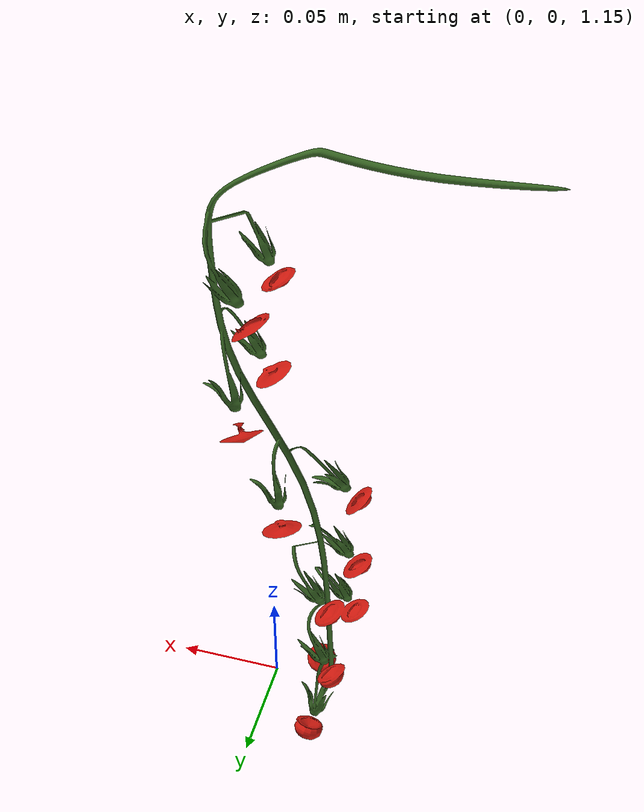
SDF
<?xml version="1.0"?>
<sdf version="1.6">
  <world name="camtest">
    <include><uri>model://sun</uri></include>
    <include><uri>model://ground_plane</uri></include>
    <model name="truss_test">
      <static>true</static>
      <pose>0 0 0.3 0 0 0</pose>
      <link name="link">
        <visual name="fruits">
          <geometry><mesh><uri>model://tomato1_truss/meshes/fruits.dae</uri></mesh></geometry>
          <material><ambient>0.82 0.10 0.06 1</ambient><diffuse>0.82 0.10 0.06 1</diffuse></material>
        </visual>
        <visual name="stems">
          <geometry><mesh><uri>model://tomato1_truss/meshes/stems.dae</uri></mesh></geometry>
          <material><ambient>0.22 0.40 0.14 1</ambient><diffuse>0.22 0.40 0.14 1</diffuse></material>
        </visual>
      </link>
    </model>
    <model name="viewcam">
      <static>true</static>
      <pose>0.55 0 1.28 0 0 3.14159</pose>
      <link name="link">
        <sensor type="camera" name="cam">
          <update_rate>10</update_rate>
          <camera>
            <horizontal_fov>1.2</horizontal_fov>
            <image><width>640</width><height>480</height><format>R8G8B8</format></image>
            <clip><near>0.05</near><far>20</far></clip>
          </camera>
          <always_on>true</always_on>
          <visualize>false</visualize>
          <plugin name="cam_ros" filename="libgazebo_ros_camera.so">
            <ros><namespace>/testcam</namespace></ros>
          </plugin>
        </sensor>
      </link>
    </model>
  </world>
</sdf>
